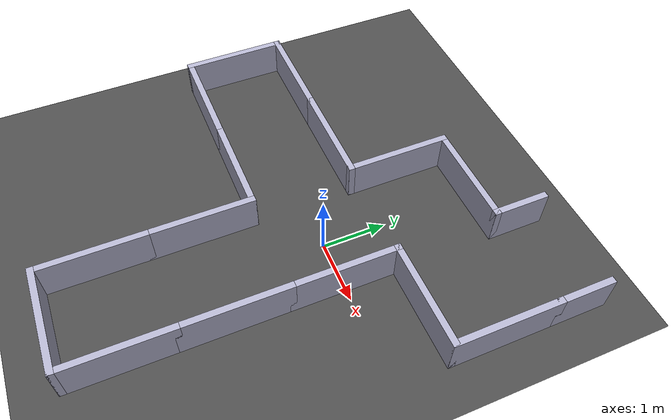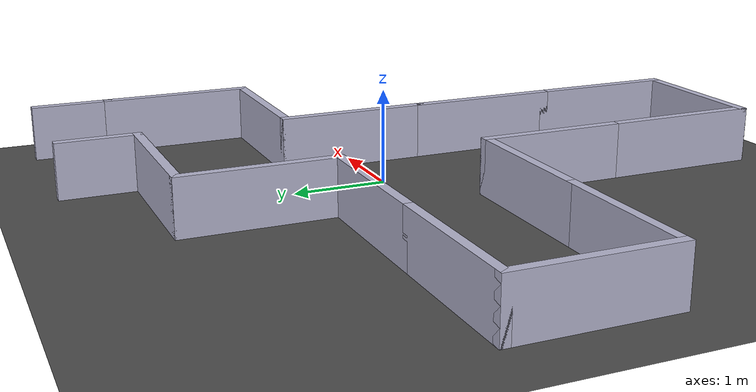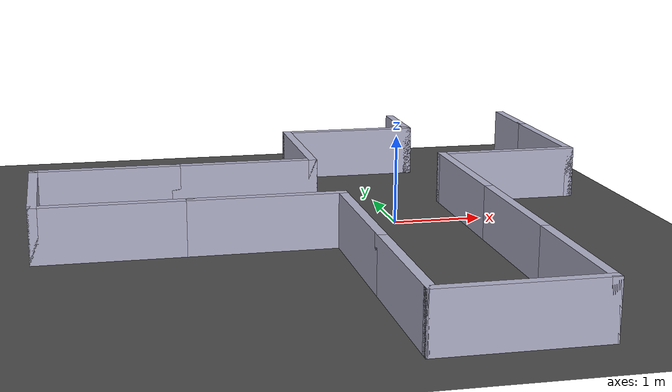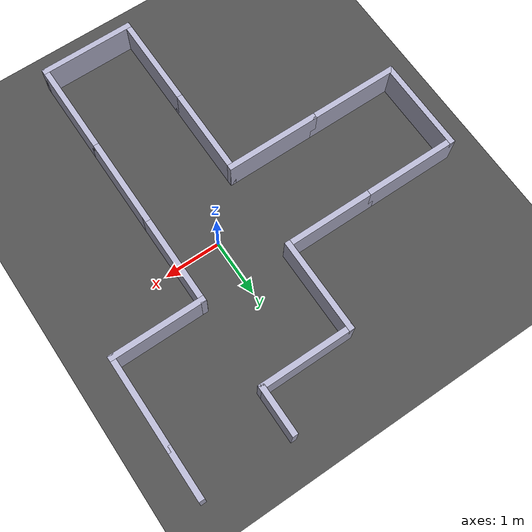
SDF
<?xml version="1.0"?>
<!-- Connected grid corridors: right branch into a dead end, return through T-junction, north exit. Dimensions are metres. -->
<sdf version="1.8">
  <world name="project1_branched">
    <physics name="physics" type="ignored"><max_step_size>0.001</max_step_size><real_time_factor>1</real_time_factor></physics>
    <plugin filename="gz-sim-physics-system" name="gz::sim::systems::Physics"/>
    <plugin filename="gz-sim-user-commands-system" name="gz::sim::systems::UserCommands"/>
    <plugin filename="gz-sim-scene-broadcaster-system" name="gz::sim::systems::SceneBroadcaster"/>
    <plugin filename="gz-sim-sensors-system" name="gz::sim::systems::Sensors"><render_engine>ogre2</render_engine></plugin>
    <plugin filename="gz-sim-imu-system" name="gz::sim::systems::Imu"/>
    <scene><ambient>0.6 0.6 0.6 1</ambient><background>0.8 0.85 0.9 1</background><shadows>false</shadows></scene>
    <light name="sun" type="directional">
      <pose>0 0 10 0 0 0</pose><diffuse>0.8 0.8 0.8 1</diffuse>
      <specular>0.2 0.2 0.2 1</specular><direction>-0.3 0.1 -0.9</direction><cast_shadows>false</cast_shadows>
      <attenuation><range>1000</range><constant>0.9</constant><linear>0.01</linear><quadratic>0.001</quadratic></attenuation>
    </light>
    <model name="ground"><static>true</static><link name="ground">
      <collision name="collision"><geometry><plane><normal>0 0 1</normal><size>30 30</size></plane></geometry></collision>
      <visual name="visual"><geometry><plane><normal>0 0 1</normal><size>30 30</size></plane></geometry>
        <material><ambient>0.3 0.3 0.3 1</ambient><diffuse>0.3 0.3 0.3 1</diffuse></material></visual>
    </link></model>
    <model name="boundary_1"><static>true</static><pose>-4 0 0.3 0 0 0</pose><link name="wall">
      <collision name="collision"><geometry><box><size>0.1 1.7 0.6</size></box></geometry></collision>
      <visual name="visual"><geometry><box><size>0.1 1.7 0.6</size></box></geometry>
        <material><ambient>0.7 0.7 0.8 1</ambient><diffuse>0.7 0.7 0.8 1</diffuse></material></visual>
    </link></model>
    <model name="boundary_2"><static>true</static><pose>-3.2 0.8 0.3 0 0 0</pose><link name="wall">
      <collision name="collision"><geometry><box><size>1.7 0.1 0.6</size></box></geometry></collision>
      <visual name="visual"><geometry><box><size>1.7 0.1 0.6</size></box></geometry>
        <material><ambient>0.7 0.7 0.8 1</ambient><diffuse>0.7 0.7 0.8 1</diffuse></material></visual>
    </link></model>
    <model name="boundary_3"><static>true</static><pose>-3.2 -0.8 0.3 0 0 0</pose><link name="wall">
      <collision name="collision"><geometry><box><size>1.7 0.1 0.6</size></box></geometry></collision>
      <visual name="visual"><geometry><box><size>1.7 0.1 0.6</size></box></geometry>
        <material><ambient>0.7 0.7 0.8 1</ambient><diffuse>0.7 0.7 0.8 1</diffuse></material></visual>
    </link></model>
    <model name="boundary_4"><static>true</static><pose>-1.6 0.8 0.3 0 0 0</pose><link name="wall">
      <collision name="collision"><geometry><box><size>1.7 0.1 0.6</size></box></geometry></collision>
      <visual name="visual"><geometry><box><size>1.7 0.1 0.6</size></box></geometry>
        <material><ambient>0.7 0.7 0.8 1</ambient><diffuse>0.7 0.7 0.8 1</diffuse></material></visual>
    </link></model>
    <model name="boundary_5"><static>true</static><pose>-1.6 -0.8 0.3 0 0 0</pose><link name="wall">
      <collision name="collision"><geometry><box><size>1.7 0.1 0.6</size></box></geometry></collision>
      <visual name="visual"><geometry><box><size>1.7 0.1 0.6</size></box></geometry>
        <material><ambient>0.7 0.7 0.8 1</ambient><diffuse>0.7 0.7 0.8 1</diffuse></material></visual>
    </link></model>
    <model name="boundary_6"><static>true</static><pose>0.8 0 0.3 0 0 0</pose><link name="wall">
      <collision name="collision"><geometry><box><size>0.1 1.7 0.6</size></box></geometry></collision>
      <visual name="visual"><geometry><box><size>0.1 1.7 0.6</size></box></geometry>
        <material><ambient>0.7 0.7 0.8 1</ambient><diffuse>0.7 0.7 0.8 1</diffuse></material></visual>
    </link></model>
    <model name="boundary_7"><static>true</static><pose>0.8 -1.6 0.3 0 0 0</pose><link name="wall">
      <collision name="collision"><geometry><box><size>0.1 1.7 0.6</size></box></geometry></collision>
      <visual name="visual"><geometry><box><size>0.1 1.7 0.6</size></box></geometry>
        <material><ambient>0.7 0.7 0.8 1</ambient><diffuse>0.7 0.7 0.8 1</diffuse></material></visual>
    </link></model>
    <model name="boundary_8"><static>true</static><pose>-0.8 -1.6 0.3 0 0 0</pose><link name="wall">
      <collision name="collision"><geometry><box><size>0.1 1.7 0.6</size></box></geometry></collision>
      <visual name="visual"><geometry><box><size>0.1 1.7 0.6</size></box></geometry>
        <material><ambient>0.7 0.7 0.8 1</ambient><diffuse>0.7 0.7 0.8 1</diffuse></material></visual>
    </link></model>
    <model name="boundary_9"><static>true</static><pose>0.8 -3.2 0.3 0 0 0</pose><link name="wall">
      <collision name="collision"><geometry><box><size>0.1 1.7 0.6</size></box></geometry></collision>
      <visual name="visual"><geometry><box><size>0.1 1.7 0.6</size></box></geometry>
        <material><ambient>0.7 0.7 0.8 1</ambient><diffuse>0.7 0.7 0.8 1</diffuse></material></visual>
    </link></model>
    <model name="boundary_10"><static>true</static><pose>-0.8 -3.2 0.3 0 0 0</pose><link name="wall">
      <collision name="collision"><geometry><box><size>0.1 1.7 0.6</size></box></geometry></collision>
      <visual name="visual"><geometry><box><size>0.1 1.7 0.6</size></box></geometry>
        <material><ambient>0.7 0.7 0.8 1</ambient><diffuse>0.7 0.7 0.8 1</diffuse></material></visual>
    </link></model>
    <model name="boundary_11"><static>true</static><pose>0 -4 0.3 0 0 0</pose><link name="wall">
      <collision name="collision"><geometry><box><size>1.7 0.1 0.6</size></box></geometry></collision>
      <visual name="visual"><geometry><box><size>1.7 0.1 0.6</size></box></geometry>
        <material><ambient>0.7 0.7 0.8 1</ambient><diffuse>0.7 0.7 0.8 1</diffuse></material></visual>
    </link></model>
    <model name="boundary_12"><static>true</static><pose>-0.8 1.6 0.3 0 0 0</pose><link name="wall">
      <collision name="collision"><geometry><box><size>0.1 1.7 0.6</size></box></geometry></collision>
      <visual name="visual"><geometry><box><size>0.1 1.7 0.6</size></box></geometry>
        <material><ambient>0.7 0.7 0.8 1</ambient><diffuse>0.7 0.7 0.8 1</diffuse></material></visual>
    </link></model>
    <model name="boundary_13"><static>true</static><pose>0 2.4000000000000004 0.3 0 0 0</pose><link name="wall">
      <collision name="collision"><geometry><box><size>1.7 0.1 0.6</size></box></geometry></collision>
      <visual name="visual"><geometry><box><size>1.7 0.1 0.6</size></box></geometry>
        <material><ambient>0.7 0.7 0.8 1</ambient><diffuse>0.7 0.7 0.8 1</diffuse></material></visual>
    </link></model>
    <model name="boundary_14"><static>true</static><pose>2.4000000000000004 1.6 0.3 0 0 0</pose><link name="wall">
      <collision name="collision"><geometry><box><size>0.1 1.7 0.6</size></box></geometry></collision>
      <visual name="visual"><geometry><box><size>0.1 1.7 0.6</size></box></geometry>
        <material><ambient>0.7 0.7 0.8 1</ambient><diffuse>0.7 0.7 0.8 1</diffuse></material></visual>
    </link></model>
    <model name="boundary_15"><static>true</static><pose>1.6 0.8 0.3 0 0 0</pose><link name="wall">
      <collision name="collision"><geometry><box><size>1.7 0.1 0.6</size></box></geometry></collision>
      <visual name="visual"><geometry><box><size>1.7 0.1 0.6</size></box></geometry>
        <material><ambient>0.7 0.7 0.8 1</ambient><diffuse>0.7 0.7 0.8 1</diffuse></material></visual>
    </link></model>
    <model name="exit_west"><static>true</static><pose>0.8 2.8 0.3 0 0 0</pose><link name="wall">
      <collision name="collision"><geometry><box><size>0.1 0.9 0.6</size></box></geometry></collision>
      <visual name="visual"><geometry><box><size>0.1 0.9 0.6</size></box></geometry>
        <material><ambient>0.7 0.7 0.8 1</ambient><diffuse>0.7 0.7 0.8 1</diffuse></material></visual>
    </link></model>
    <model name="exit_east"><static>true</static><pose>2.4 2.8 0.3 0 0 0</pose><link name="wall">
      <collision name="collision"><geometry><box><size>0.1 0.9 0.6</size></box></geometry></collision>
      <visual name="visual"><geometry><box><size>0.1 0.9 0.6</size></box></geometry>
        <material><ambient>0.7 0.7 0.8 1</ambient><diffuse>0.7 0.7 0.8 1</diffuse></material></visual>
    </link></model>
  </world>
</sdf>
